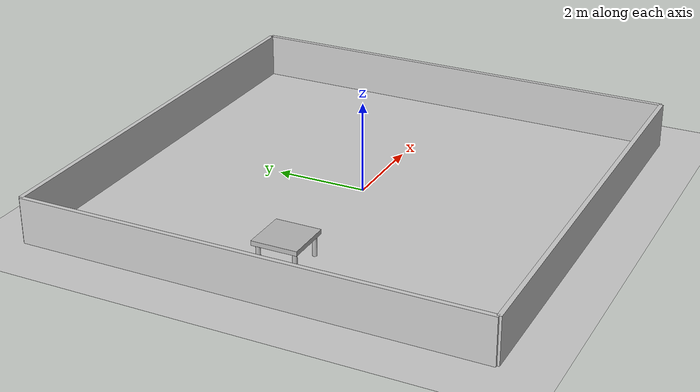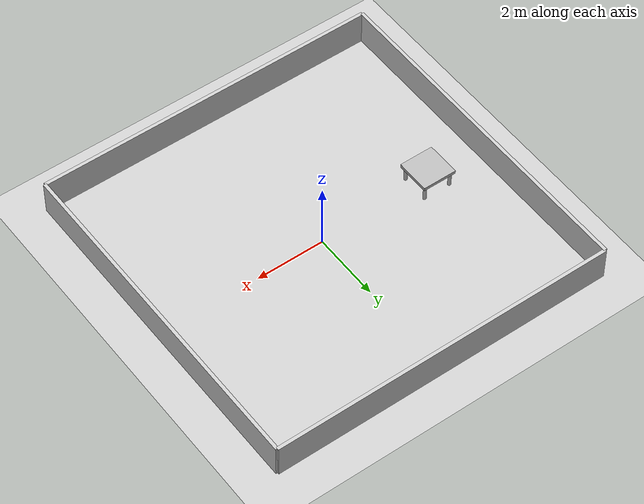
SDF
<sdf version='1.10'>
  <world name='room_world'>
    <gravity>0 0 -9.8000000000000007</gravity>
    <physics type='ode'>
      <max_step_size>0.001</max_step_size>
      <real_time_update_rate>1000</real_time_update_rate>
      <real_time_factor>1</real_time_factor>
    </physics>
    <magnetic_field>5.5644999999999998e-06 2.2875799999999999e-05 -4.2388400000000002e-05</magnetic_field>
    <atmosphere type='adiabatic'/>
    <scene>
      <ambient>0.400000006 0.400000006 0.400000006 1</ambient>
      <background>0.699999988 0.699999988 0.699999988 1</background>
      <shadows>true</shadows>
    </scene>
    <include>
      <uri>file:///home/jenkins/Code/world/models/floor/ground_plane</uri>
      <name>ground_plane</name>
      <pose>0 0 0 0 0 0</pose>
    </include>
    <include>
      <uri>file:///home/jenkins/Code/world/models/static_objects/table</uri>
      <name>table</name>
      <pose>-3.35086989402771 0 0.5 0 0 0</pose>
    </include>
    <include>
      <uri>file:///home/jenkins/Code/world/models/building//wall</uri>
      <name>wall_front</name>
      <pose>0 5 0.5 0 0 0</pose>
    </include>
    <include>
      <uri>file:///home/jenkins/Code/world/models/building/wall</uri>
      <name>wall_back</name>
      <pose>0 -5 0.5 0 0 0</pose>
    </include>
    <include>
      <uri>file:///home/jenkins/Code/world/models/building/wall</uri>
      <name>wall_left</name>
      <pose>-5 0 0.5 0 0 1.5708000000000006</pose>
    </include>
    <include>
      <uri>file:///home/jenkins/Code/world/models/building/wall</uri>
      <name>wall_right</name>
      <pose>5 0 0.5 0 0 1.5708000000000006</pose>
    </include>
    <light name='sun' type='directional'>
      <pose>0 0 10 0 0 0</pose>
      <cast_shadows>false</cast_shadows>
      <intensity>1</intensity>
      <direction>-0.5 0.5 -1</direction>
      <diffuse>1 1 1 1</diffuse>
      <specular>0.100000001 0.100000001 0.100000001 1</specular>
      <attenuation>
        <range>10</range>
        <linear>1</linear>
        <constant>1</constant>
        <quadratic>0</quadratic>
      </attenuation>
      <spot>
        <inner_angle>0</inner_angle>
        <outer_angle>0</outer_angle>
        <falloff>0</falloff>
      </spot>
    </light>
  </world>
</sdf>

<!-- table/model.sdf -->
<sdf version="1.7">
  <model name="table">
    <pose>0 0 0.5 0 0 0</pose> <!-- Position of the table -->

    <!-- Tabletop -->
    <link name="table_body">
      <collision name="collision_table_body">
        <geometry>
          <box>
            <size>1.0 1.0 0.1</size> <!-- Tabletop dimensions -->
          </box>
        </geometry>
      </collision>
      <visual name="visual_table_body">
        <geometry>
          <box>
            <size>1.0 1.0 0.1</size>
          </box>
        </geometry>
      </visual>
    </link>

    <!-- Table legs -->
    <link name="leg_1">
      <pose>-0.4 -0.4 -0.25 0 0 0</pose>
      <collision name="collision_leg_1">
        <geometry>
          <cylinder>
            <radius>0.05</radius>
            <length>0.5</length>
          </cylinder>
        </geometry>
      </collision>
      <visual name="visual_leg_1">
        <geometry>
          <cylinder>
            <radius>0.05</radius>
            <length>0.5</length>
          </cylinder>
        </geometry>
      </visual>
    </link>

    <link name="leg_2">
      <pose>0.4 -0.4 -0.25 0 0 0</pose>
      <collision name="collision_leg_2">
        <geometry>
          <cylinder>
            <radius>0.05</radius>
            <length>0.5</length>
          </cylinder>
        </geometry>
      </collision>
      <visual name="visual_leg_2">
        <geometry>
          <cylinder>
            <radius>0.05</radius>
            <length>0.5</length>
          </cylinder>
        </geometry>
      </visual>
    </link>

    <link name="leg_3">
      <pose>-0.4 0.4 -0.25 0 0 0</pose>
      <collision name="collision_leg_3">
        <geometry>
          <cylinder>
            <radius>0.05</radius>
            <length>0.5</length>
          </cylinder>
        </geometry>
      </collision>
      <visual name="visual_leg_3">
        <geometry>
          <cylinder>
            <radius>0.05</radius>
            <length>0.5</length>
          </cylinder>
        </geometry>
      </visual>
    </link>

    <link name="leg_4">
      <pose>0.4 0.4 -0.25 0 0 0</pose>
      <collision name="collision_leg_4">
        <geometry>
          <cylinder>
            <radius>0.05</radius>
            <length>0.5</length>
          </cylinder>
        </geometry>
      </collision>
      <visual name="visual_leg_4">
        <geometry>
          <cylinder>
            <radius>0.05</radius>
            <length>0.5</length>
          </cylinder>
        </geometry>
      </visual>
    </link>

    <!-- Joints to connect legs to tabletop -->
    <joint name="joint_leg_1" type="fixed">
      <parent>table_body</parent>
      <child>leg_1</child>
    </joint>

    <joint name="joint_leg_2" type="fixed">
      <parent>table_body</parent>
      <child>leg_2</child>
    </joint>

    <joint name="joint_leg_3" type="fixed">
      <parent>table_body</parent>
      <child>leg_3</child>
    </joint>

    <joint name="joint_leg_4" type="fixed">
      <parent>table_body</parent>
      <child>leg_4</child>
    </joint>
  </model>
</sdf>

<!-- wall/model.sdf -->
<sdf version="1.7">
  <model name="wall">
    <static>true</static>
    <link name="wall_body">
      <collision name="collision_wall">
        <geometry>
          <box>
            <size>10 0.1 1</size> <!-- Length, Thickness, Height -->
          </box>
        </geometry>
      </collision>
      <visual name="visual_wall">
        <geometry>
          <box>
            <size>10 0.1 1</size>
          </box>
        </geometry>
        <material>
          <ambient>0.8 0.8 0.8 1</ambient>
        </material>
      </visual>
    </link>
  </model>
</sdf>
